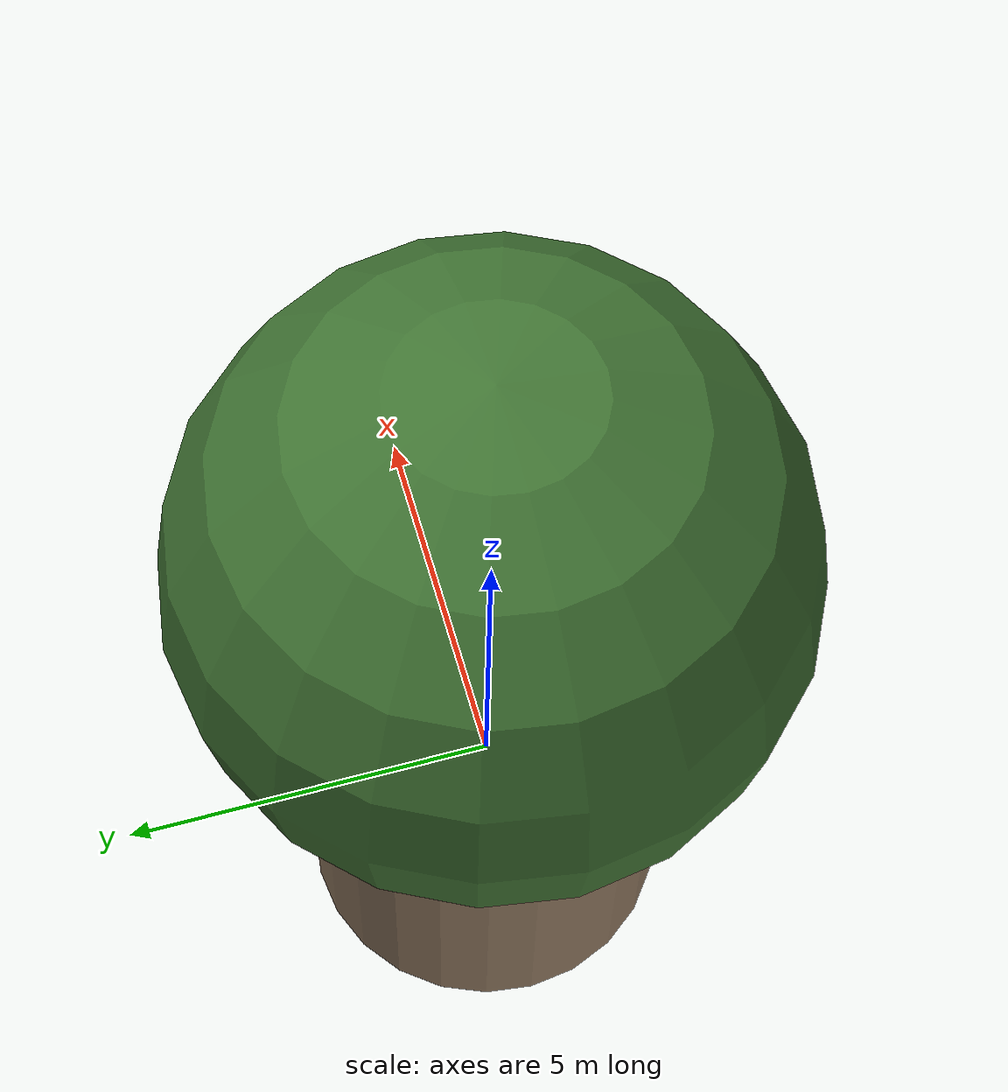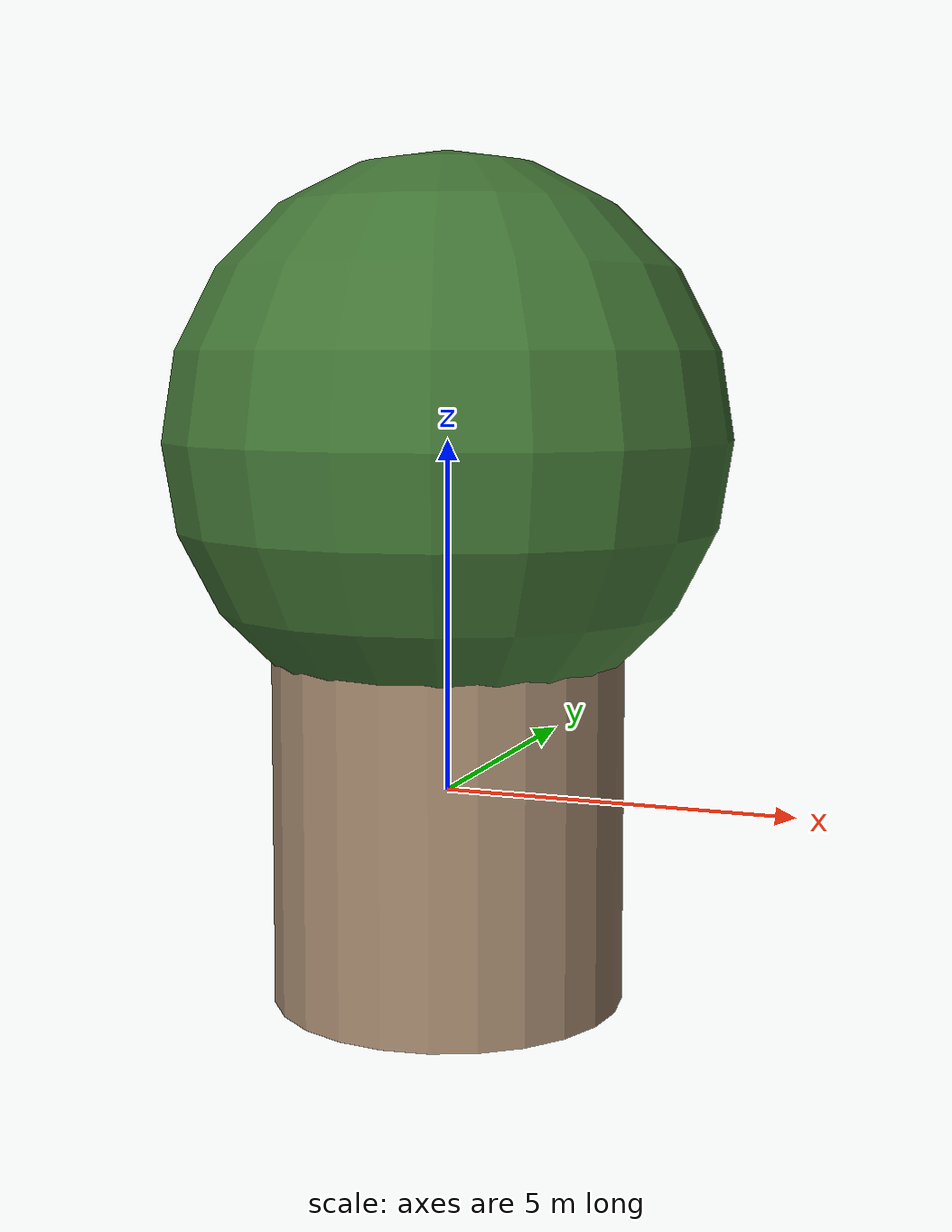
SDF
<?xml version="1.0"?>
<sdf version="1.9">
  <model name="baobab_tree">
    <static>true</static>
    <link name="trunk">
      <collision name="trunk_col">
        <geometry><cylinder><radius>2</radius><length>6</length></cylinder></geometry>
      </collision>
      <visual name="trunk_vis">
        <geometry><cylinder><radius>2.5</radius><length>6</length></cylinder></geometry>
        <material>
          <ambient>0.55 0.45 0.35 1</ambient>
          <diffuse>0.6 0.5 0.4 1</diffuse>
          <specular>0.08 0.06 0.04 1</specular>
        </material>
      </visual>
    </link>
    <link name="canopy">
      <pose>0 0 5 0 0 0</pose>
      <collision name="canopy_col">
        <geometry><sphere><radius>3.5</radius></sphere></geometry>
      </collision>
      <visual name="canopy_vis">
        <geometry><sphere><radius>4</radius></sphere></geometry>
        <material>
          <ambient>0.2 0.4 0.15 1</ambient>
          <diffuse>0.25 0.45 0.2 1</diffuse>
          <specular>0.1 0.2 0.05 1</specular>
        </material>
      </visual>
    </link>
  </model>
</sdf>
